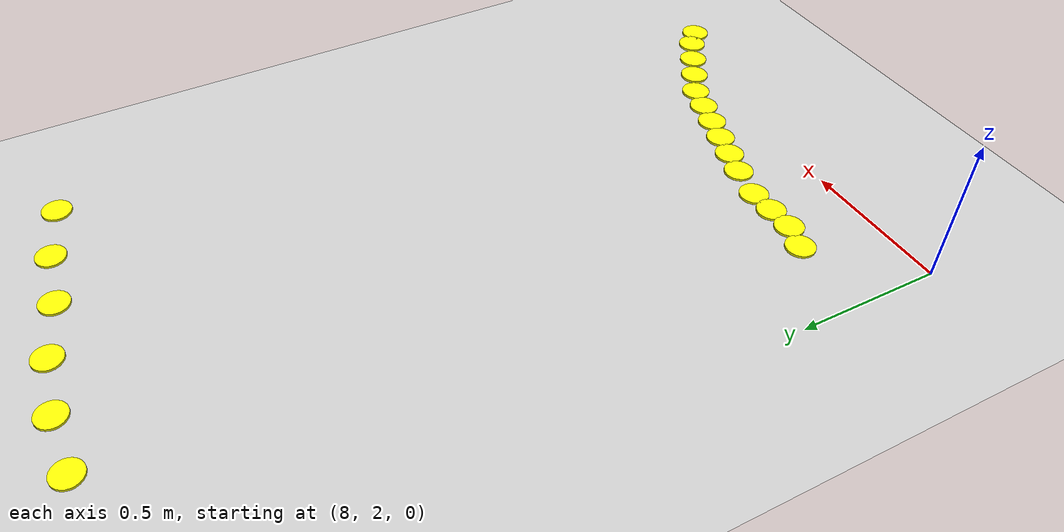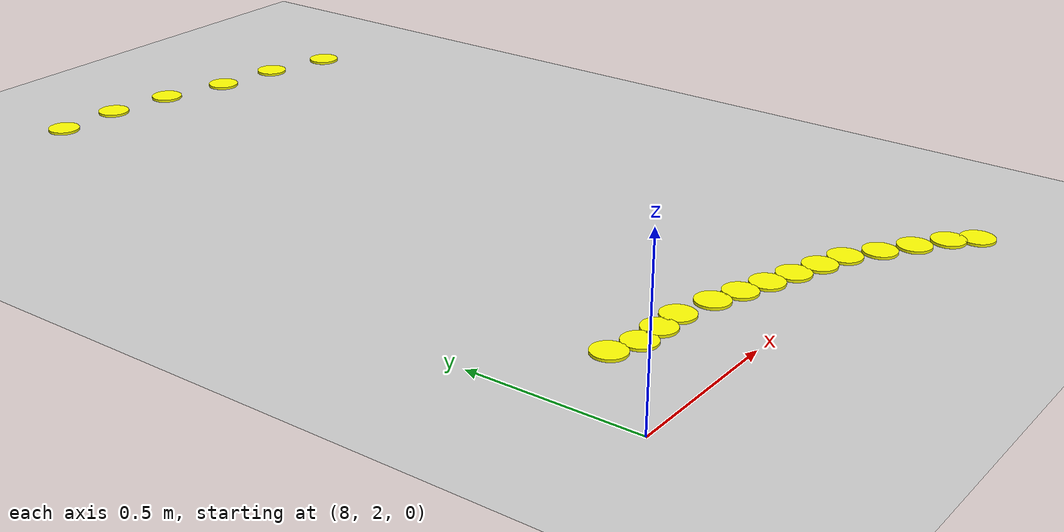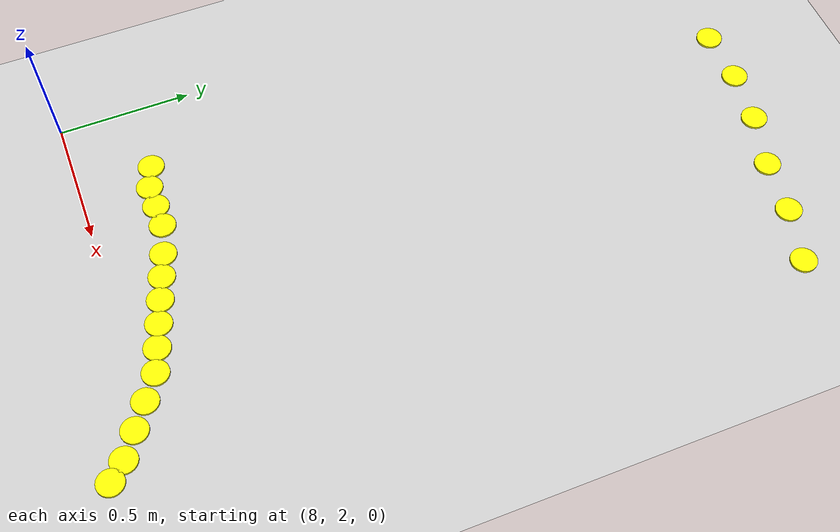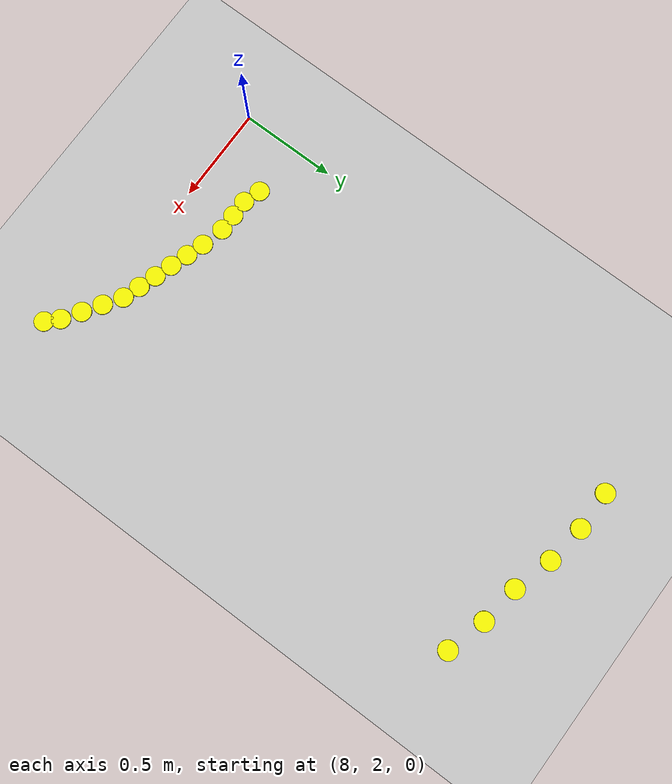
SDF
<sdf version="1.6">
 <world name="default">
  <model name="ground_plane">
   <static>1</static>
   <link name="link">
    <collision name="collision">
     <geometry><plane><normal>0 0 1</normal><size>100 100</size></plane></geometry>
     <surface><friction><ode><mu>100</mu><mu2>50</mu2></ode></friction></surface>
    </collision>
    <visual name="visual">
     <cast_shadows>0</cast_shadows>
     <geometry><plane><normal>0 0 1</normal><size>100 100</size></plane></geometry>
     <material>
      <script><uri>file://media/materials/scripts/gazebo.material</uri><name>Gazebo/Grey</name></script>
     </material>
    </visual>
   </link>
  </model>
  <model name="yellow_model_1">
   <static>1</static>
   <link name="link">
    <visual name="visual">
     <geometry><cylinder><radius>0.05</radius><length>0.01</length></cylinder></geometry>
     <material><ambient>1 1 0 1</ambient><diffuse>1 1 0 1</diffuse><specular>0.5 0.5 0.5 1</specular></material>
    </visual>
    <collision name="collision">
     <geometry><cylinder><radius>0.5</radius><length>0.01</length></cylinder></geometry>
    </collision>
   </link>
   <pose>8.49 4.53 0 0 -0 0</pose>
  </model>
  <model name="yellow_model_2">
   <static>1</static>
   <link name="link">
    <visual name="visual">
     <geometry><cylinder><radius>0.05</radius><length>0.01</length></cylinder></geometry>
     <material><ambient>1 1 0 1</ambient><diffuse>1 1 0 1</diffuse><specular>0.5 0.5 0.5 1</specular></material>
    </visual>
    <collision name="collision">
     <geometry><cylinder><radius>0.5</radius><length>0.01</length></cylinder></geometry>
    </collision>
   </link>
   <pose>8.7 4.53 0 0 -0 0</pose>
  </model>
  <model name="yellow_model_3">
   <static>1</static>
   <link name="link">
    <visual name="visual">
     <geometry><cylinder><radius>0.05</radius><length>0.01</length></cylinder></geometry>
     <material><ambient>1 1 0 1</ambient><diffuse>1 1 0 1</diffuse><specular>0.5 0.5 0.5 1</specular></material>
    </visual>
    <collision name="collision">
     <geometry><cylinder><radius>0.5</radius><length>0.01</length></cylinder></geometry>
    </collision>
   </link>
   <pose>8.91 4.5 0 0 -0 0</pose>
  </model>
  <model name="yellow_model_4">
   <static>1</static>
   <link name="link">
    <visual name="visual">
     <geometry><cylinder><radius>0.05</radius><length>0.01</length></cylinder></geometry>
     <material><ambient>1 1 0 1</ambient><diffuse>1 1 0 1</diffuse><specular>0.5 0.5 0.5 1</specular></material>
    </visual>
    <collision name="collision">
     <geometry><cylinder><radius>0.5</radius><length>0.01</length></cylinder></geometry>
    </collision>
   </link>
   <pose>9.12 4.44 0 0 -0 0</pose>
  </model>
  <model name="yellow_model_5">
   <static>1</static>
   <link name="link">
    <visual name="visual">
     <geometry><cylinder><radius>0.05</radius><length>0.01</length></cylinder></geometry>
     <material><ambient>1 1 0 1</ambient><diffuse>1 1 0 1</diffuse><specular>0.5 0.5 0.5 1</specular></material>
    </visual>
    <collision name="collision">
     <geometry><cylinder><radius>0.5</radius><length>0.01</length></cylinder></geometry>
    </collision>
   </link>
   <pose>9.33 4.41 0 0 -0 0</pose>
  </model>
  <model name="yellow_model_6">
   <static>1</static>
   <link name="link">
    <visual name="visual">
     <geometry><cylinder><radius>0.05</radius><length>0.01</length></cylinder></geometry>
     <material><ambient>1 1 0 1</ambient><diffuse>1 1 0 1</diffuse><specular>0.5 0.5 0.5 1</specular></material>
    </visual>
    <collision name="collision">
     <geometry><cylinder><radius>0.5</radius><length>0.01</length></cylinder></geometry>
    </collision>
   </link>
   <pose>9.54 4.35 0 0 -0 0</pose>
  </model>
  <model name="yellow_model_61">
   <static>1</static>
   <link name="link">
    <visual name="visual">
     <geometry><cylinder><radius>0.05</radius><length>0.01</length></cylinder></geometry>
     <material><ambient>1 1 0 1</ambient><diffuse>1 1 0 1</diffuse><specular>0.5 0.5 0.5 1</specular></material>
    </visual>
    <collision name="collision">
     <geometry><cylinder><radius>0.5</radius><length>0.01</length></cylinder></geometry>
    </collision>
   </link>
   <pose>8.28 2.28 0 0 -0 0</pose>
  </model>
  <model name="yellow_model_62">
   <static>1</static>
   <link name="link">
    <visual name="visual">
     <geometry><cylinder><radius>0.05</radius><length>0.01</length></cylinder></geometry>
     <material><ambient>1 1 0 1</ambient><diffuse>1 1 0 1</diffuse><specular>0.5 0.5 0.5 1</specular></material>
    </visual>
    <collision name="collision">
     <geometry><cylinder><radius>0.5</radius><length>0.01</length></cylinder></geometry>
    </collision>
   </link>
   <pose>8.37 2.25 0 0 -0 0</pose>
  </model>
  <model name="yellow_model_63">
   <static>1</static>
   <link name="link">
    <visual name="visual">
     <geometry><cylinder><radius>0.05</radius><length>0.01</length></cylinder></geometry>
     <material><ambient>1 1 0 1</ambient><diffuse>1 1 0 1</diffuse><specular>0.5 0.5 0.5 1</specular></material>
    </visual>
    <collision name="collision">
     <geometry><cylinder><radius>0.5</radius><length>0.01</length></cylinder></geometry>
    </collision>
   </link>
   <pose>8.46 2.25 0 0 -0 0</pose>
  </model>
  <model name="yellow_model_64">
   <static>1</static>
   <link name="link">
    <visual name="visual">
     <geometry><cylinder><radius>0.05</radius><length>0.01</length></cylinder></geometry>
     <material><ambient>1 1 0 1</ambient><diffuse>1 1 0 1</diffuse><specular>0.5 0.5 0.5 1</specular></material>
    </visual>
    <collision name="collision">
     <geometry><cylinder><radius>0.5</radius><length>0.01</length></cylinder></geometry>
    </collision>
   </link>
   <pose>8.55 2.25 0 0 -0 0</pose>
  </model>
  <model name="yellow_model_65">
   <static>1</static>
   <link name="link">
    <visual name="visual">
     <geometry><cylinder><radius>0.05</radius><length>0.01</length></cylinder></geometry>
     <material><ambient>1 1 0 1</ambient><diffuse>1 1 0 1</diffuse><specular>0.5 0.5 0.5 1</specular></material>
    </visual>
    <collision name="collision">
     <geometry><cylinder><radius>0.5</radius><length>0.01</length></cylinder></geometry>
    </collision>
   </link>
   <pose>8.67 2.22 0 0 -0 0</pose>
  </model>
  <model name="yellow_model_66">
   <static>1</static>
   <link name="link">
    <visual name="visual">
     <geometry><cylinder><radius>0.05</radius><length>0.01</length></cylinder></geometry>
     <material><ambient>1 1 0 1</ambient><diffuse>1 1 0 1</diffuse><specular>0.5 0.5 0.5 1</specular></material>
    </visual>
    <collision name="collision">
     <geometry><cylinder><radius>0.5</radius><length>0.01</length></cylinder></geometry>
    </collision>
   </link>
   <pose>8.76 2.19 0 0 -0 0</pose>
  </model>
  <model name="yellow_model_67">
   <static>1</static>
   <link name="link">
    <visual name="visual">
     <geometry><cylinder><radius>0.05</radius><length>0.01</length></cylinder></geometry>
     <material><ambient>1 1 0 1</ambient><diffuse>1 1 0 1</diffuse><specular>0.5 0.5 0.5 1</specular></material>
    </visual>
    <collision name="collision">
     <geometry><cylinder><radius>0.5</radius><length>0.01</length></cylinder></geometry>
    </collision>
   </link>
   <pose>8.85 2.16 0 0 -0 0</pose>
  </model>
  <model name="yellow_model_68">
   <static>1</static>
   <link name="link">
    <visual name="visual">
     <geometry><cylinder><radius>0.05</radius><length>0.01</length></cylinder></geometry>
     <material><ambient>1 1 0 1</ambient><diffuse>1 1 0 1</diffuse><specular>0.5 0.5 0.5 1</specular></material>
    </visual>
    <collision name="collision">
     <geometry><cylinder><radius>0.5</radius><length>0.01</length></cylinder></geometry>
    </collision>
   </link>
   <pose>8.94 2.13 0 0 -0 0</pose>
  </model>
  <model name="yellow_model_69">
   <static>1</static>
   <link name="link">
    <visual name="visual">
     <geometry><cylinder><radius>0.05</radius><length>0.01</length></cylinder></geometry>
     <material><ambient>1 1 0 1</ambient><diffuse>1 1 0 1</diffuse><specular>0.5 0.5 0.5 1</specular></material>
    </visual>
    <collision name="collision">
     <geometry><cylinder><radius>0.5</radius><length>0.01</length></cylinder></geometry>
    </collision>
   </link>
   <pose>9.03 2.1 0 0 -0 0</pose>
  </model>
  <model name="yellow_model_70">
   <static>1</static>
   <link name="link">
    <visual name="visual">
     <geometry><cylinder><radius>0.05</radius><length>0.01</length></cylinder></geometry>
     <material><ambient>1 1 0 1</ambient><diffuse>1 1 0 1</diffuse><specular>0.5 0.5 0.5 1</specular></material>
    </visual>
    <collision name="collision">
     <geometry><cylinder><radius>0.5</radius><length>0.01</length></cylinder></geometry>
    </collision>
   </link>
   <pose>9.12 2.07 0 0 -0 0</pose>
  </model>
  <model name="yellow_model_71">
   <static>1</static>
   <link name="link">
    <visual name="visual">
     <geometry><cylinder><radius>0.05</radius><length>0.01</length></cylinder></geometry>
     <material><ambient>1 1 0 1</ambient><diffuse>1 1 0 1</diffuse><specular>0.5 0.5 0.5 1</specular></material>
    </visual>
    <collision name="collision">
     <geometry><cylinder><radius>0.5</radius><length>0.01</length></cylinder></geometry>
    </collision>
   </link>
   <pose>9.21 2.01 0 0 -0 0</pose>
  </model>
  <model name="yellow_model_72">
   <static>1</static>
   <link name="link">
    <visual name="visual">
     <geometry><cylinder><radius>0.05</radius><length>0.01</length></cylinder></geometry>
     <material><ambient>1 1 0 1</ambient><diffuse>1 1 0 1</diffuse><specular>0.5 0.5 0.5 1</specular></material>
    </visual>
    <collision name="collision">
     <geometry><cylinder><radius>0.5</radius><length>0.01</length></cylinder></geometry>
    </collision>
   </link>
   <pose>9.3 1.95 0 0 -0 0</pose>
  </model>
  <model name="yellow_model_73">
   <static>1</static>
   <link name="link">
    <visual name="visual">
     <geometry><cylinder><radius>0.05</radius><length>0.01</length></cylinder></geometry>
     <material><ambient>1 1 0 1</ambient><diffuse>1 1 0 1</diffuse><specular>0.5 0.5 0.5 1</specular></material>
    </visual>
    <collision name="collision">
     <geometry><cylinder><radius>0.5</radius><length>0.01</length></cylinder></geometry>
    </collision>
   </link>
   <pose>9.39 1.89 0 0 -0 0</pose>
  </model>
  <model name="yellow_model_74">
   <static>1</static>
   <link name="link">
    <visual name="visual">
     <geometry><cylinder><radius>0.05</radius><length>0.01</length></cylinder></geometry>
     <material><ambient>1 1 0 1</ambient><diffuse>1 1 0 1</diffuse><specular>0.5 0.5 0.5 1</specular></material>
    </visual>
    <collision name="collision">
     <geometry><cylinder><radius>0.5</radius><length>0.01</length></cylinder></geometry>
    </collision>
   </link>
   <pose>9.45 1.83 0 0 -0 0</pose>
  </model>
 </world>
</sdf>
